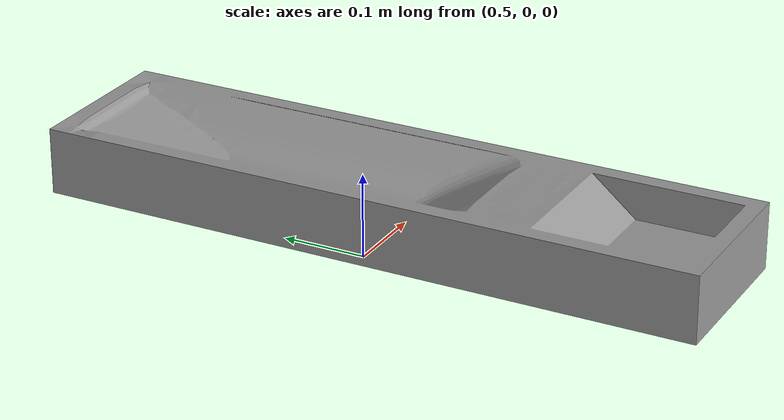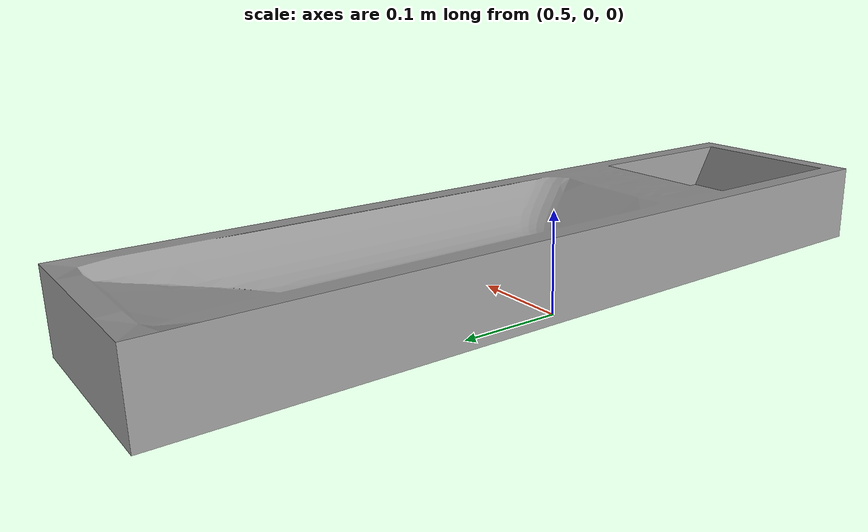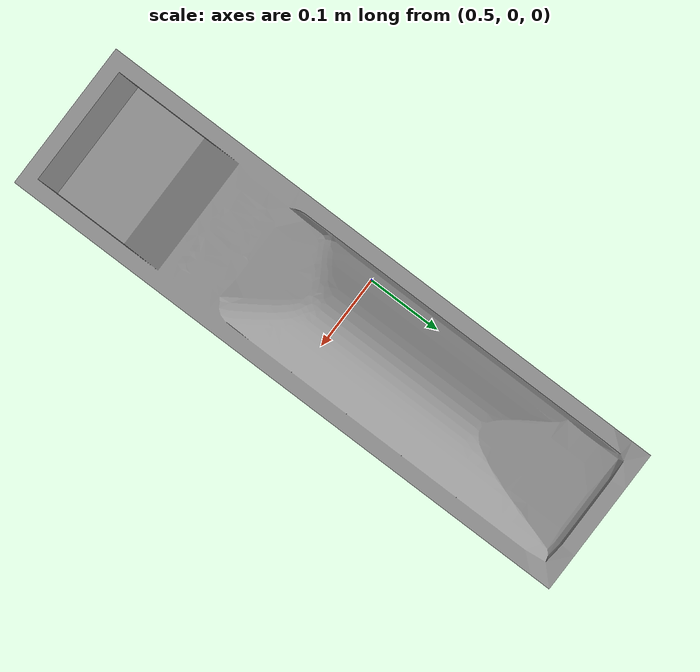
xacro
<?xml version="1.0" encoding="utf-8"?>
<robot xmlns:xacro="http://www.ros.org/wiki/xacro" name="polishing_mold">

  <!-- Import all Gazebo-customization elements, including Gazebo colors -->
  <xacro:include filename="$(find franka_description)/polishing_simulation/molds/polishing_mold.gazebo" />

  <!-- Used for fixing mold to Gazebo 'base_link' -->
  <link name="world"/>
  <joint name="mold_to_world" type="fixed">
    <parent link="world"/>
    <child link="polishing_mold"/>
    <origin xyz="0.465994 -0.408933 0.0877107" rpy="0.0 0.0 0.0" />
    <dynamics damping="1.0" friction="0.0"/>
  </joint>

  <!-- polishing_mold Link -->
  <link name="polishing_mold">
    <visual>
      <origin xyz="0.0 0.0 0.0" rpy="0.0 0.0 0.0"/>
      <geometry>
        <mesh filename="package://franka_description/meshes/visual/polishing_mold.dae"/>
      </geometry>
    </visual>
    <collision>
      <origin xyz="0.0 0.0 0.0" rpy="0.0 0.0 0.0"/>
      <geometry>
        <mesh filename="package://franka_description/meshes/collision/polishing_mold.stl"/>
      </geometry>
    </collision>
    <inertial>
      <origin xyz="0.0 0.0 0.0" rpy="0.0 0.0 0.0"/>
      <mass value="50"/>
      <inertia ixx="1.0" ixy="0.0" ixz="0.0" iyy="1.0" iyz="0.0" izz="1.0"/>
    </inertial>
  </link>

</robot>
